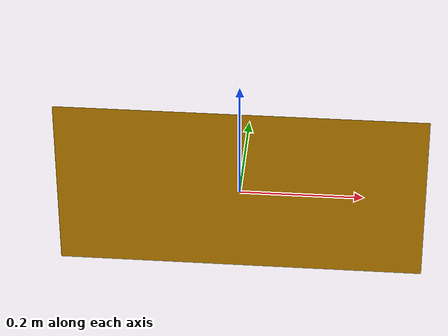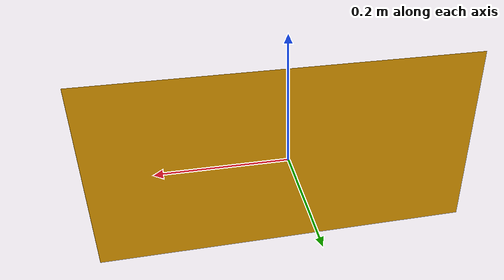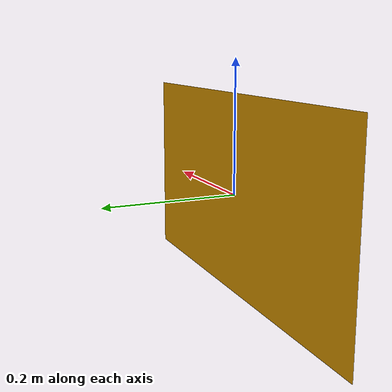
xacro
<?xml version="1.0"?>
<robot xmlns:xacro="http://www.ros.org/wiki/xacro" name="robot_name">
    <!-- example of macro-->
    <xacro:macro name="wheel_creation" params="wheel_name length width">
        <link name="${wheel_name}">
            <visual>
                <geometry>
                    <box size="${length} 0.0 ${width}"/>
                </geometry>
            </visual>
        </link>
    </xacro:macro>
    <!-- using the macro-->
    <xacro:wheel_creation wheel_name="Wheel12" length="0.6" width="0.3" />

</robot>
